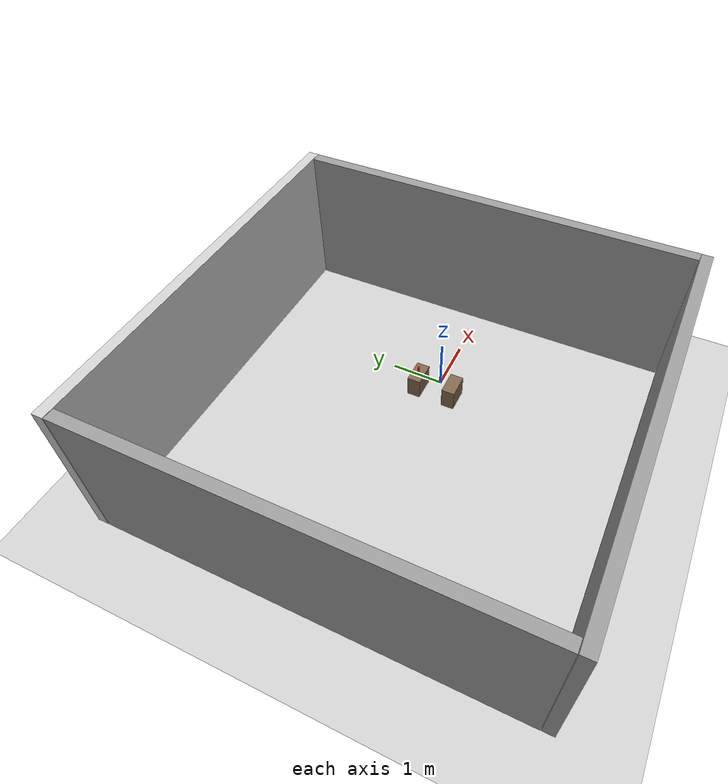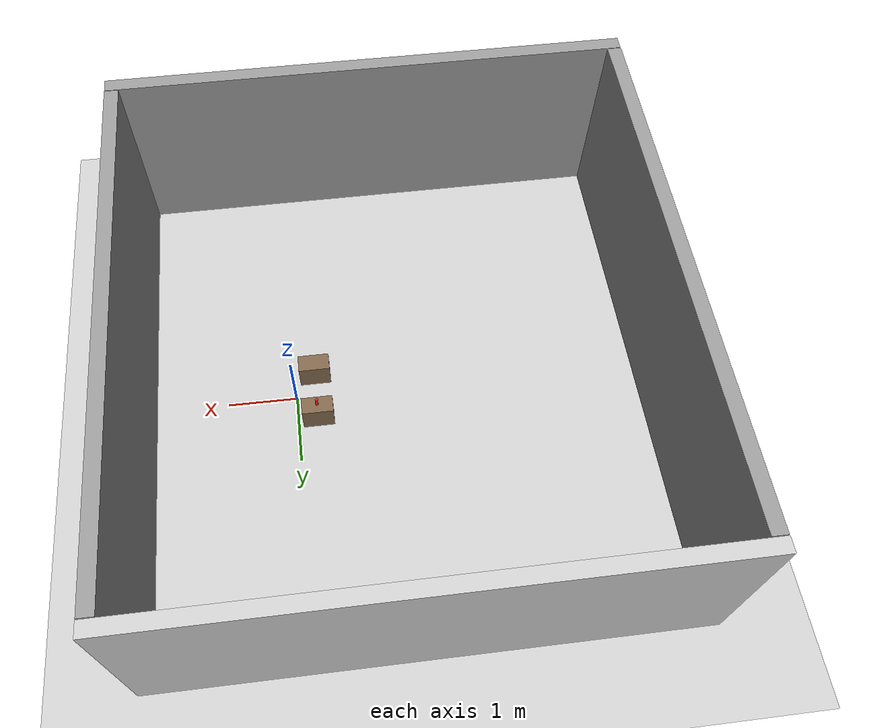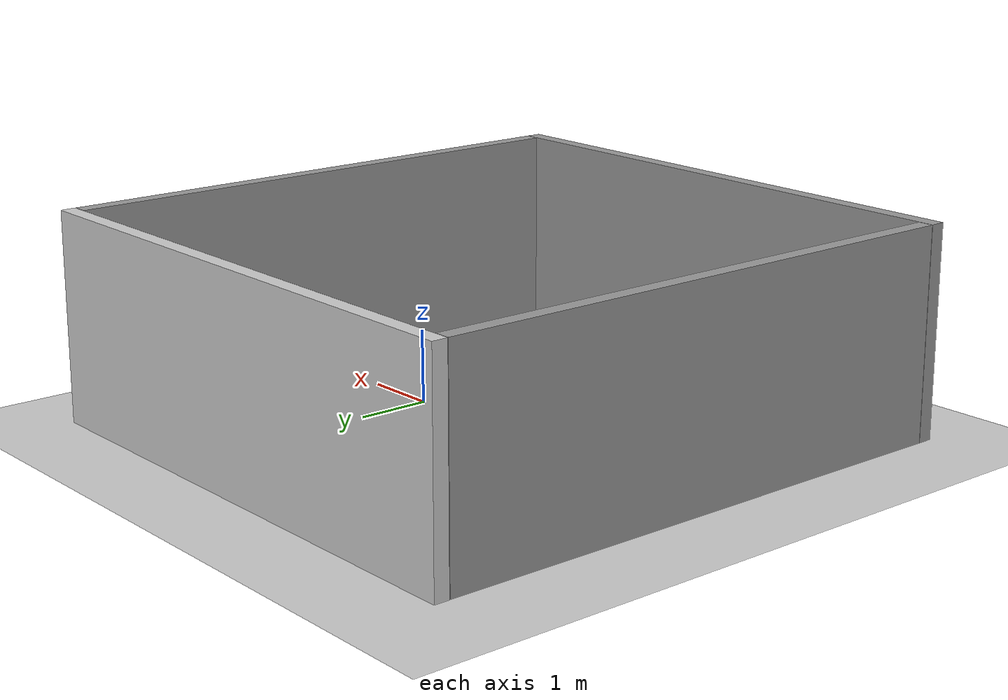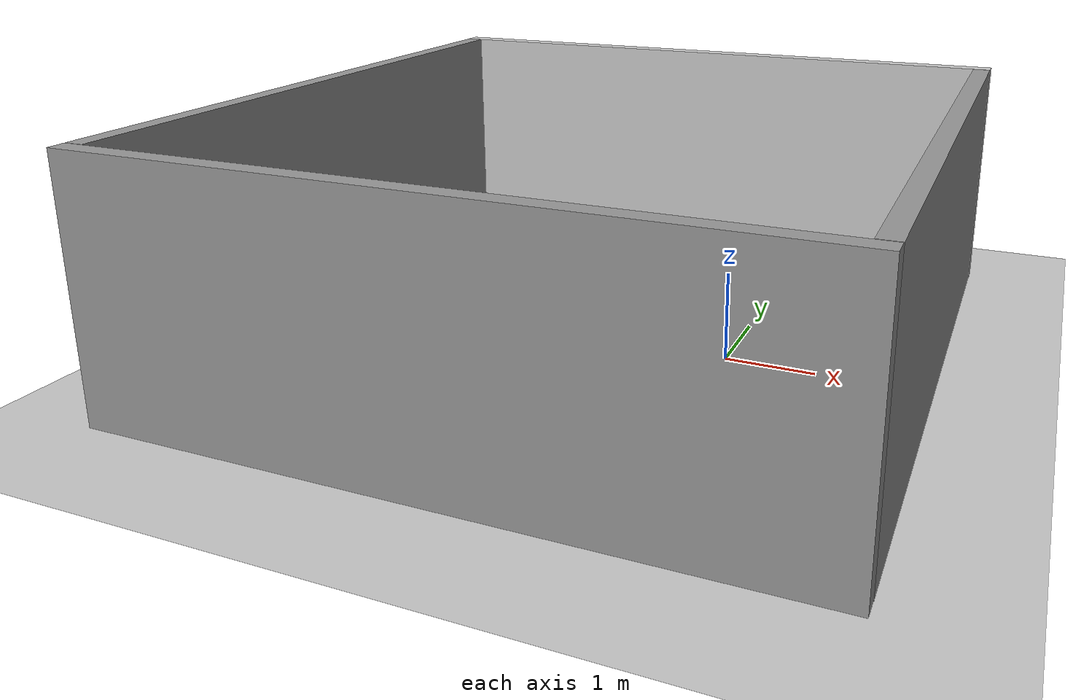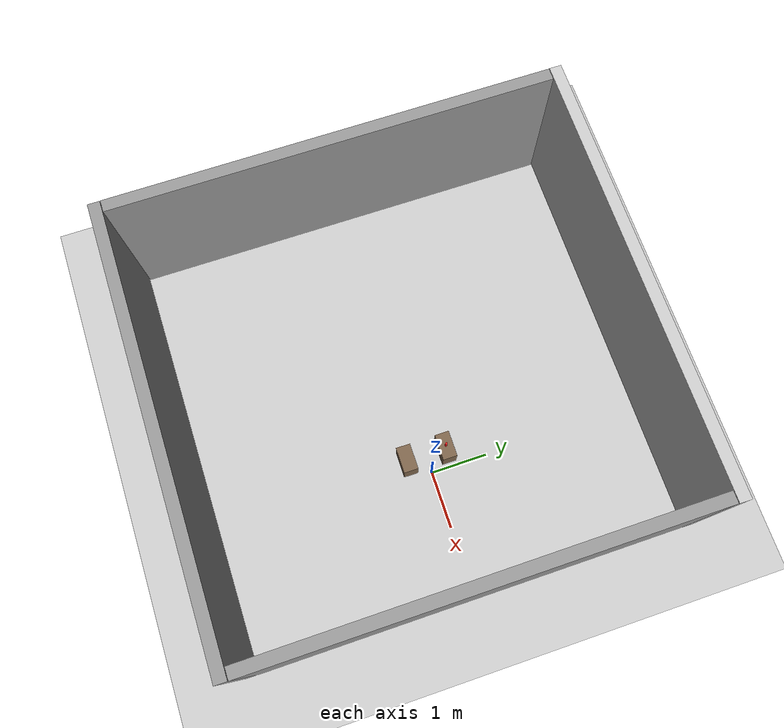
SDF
<sdf version="1.10">
 <world name="lab">
  <physics name="1ms" type="ode">
   <max_step_size>0.001</max_step_size>
   <real_time_factor>1</real_time_factor>
   <real_time_update_rate>1000</real_time_update_rate>
   <ode>
    <solver><type>quick</type><iters>50</iters><sor>1.3</sor></solver>
    <constraints>
     <cfm>0.0</cfm>
     <erp>0.2</erp>
     <contact_max_correcting_vel>100.0</contact_max_correcting_vel>
     <contact_surface_layer>0.001</contact_surface_layer>
    </constraints>
   </ode>
  </physics>
  <plugin name="gz::sim::systems::Physics" filename="gz-sim-physics-system"/>
  <plugin name="gz::sim::systems::UserCommands" filename="gz-sim-user-commands-system"/>
  <plugin name="gz::sim::systems::SceneBroadcaster" filename="gz-sim-scene-broadcaster-system"/>
  <gravity>0 0 -9.8000000000000007</gravity>
  <magnetic_field>5.5644999999999998e-06 2.2875799999999999e-05 -4.2388400000000002e-05</magnetic_field>
  <atmosphere type="adiabatic"/>
  <scene>
   <ambient>0.400000006 0.400000006 0.400000006 1</ambient>
   <background>0.699999988 0.699999988 0.699999988 1</background>
   <shadows>true</shadows>
  </scene>
  <model name="ground_plane">
   <static>true</static>
   <link name="link">
    <collision name="collision">
     <geometry><plane><normal>0 0 1</normal><size>100 100</size></plane></geometry>
     <surface>
      <friction><ode><mu>1.0</mu><mu2>1.0</mu2></ode></friction>
      <contact><ode><kp>1e7</kp><kd>1.0</kd><max_vel>0.01</max_vel><min_depth>0.001</min_depth></ode></contact>
      <bounce><restitution_coefficient>0</restitution_coefficient><threshold>1e6</threshold></bounce>
     </surface>
    </collision>
    <visual name="visual">
     <geometry><plane><normal>0 0 1</normal><size>100 100</size></plane></geometry>
     <material>
      <ambient>0.800000012 0.800000012 0.800000012 1</ambient>
      <diffuse>0.800000012 0.800000012 0.800000012 1</diffuse>
      <specular>0.800000012 0.800000012 0.800000012 1</specular>
     </material>
    </visual>
    <inertial>
     <mass>1</mass>
     <inertia><ixx>1</ixx><ixy>0</ixy><ixz>0</ixz><iyy>1</iyy><iyz>0</iyz><izz>1</izz></inertia>
    </inertial>
   </link>
  </model>
  <include>
   <uri>model://grey_wall_ldrobots</uri>
   <name>front_grey_wall</name>
   <pose>-1.5 3.86 0 0 0 0</pose>
  </include>
  <include><uri>model://grey_wall</uri><name>back_grey_wall</name><pose>-1.5 -3.86 0 0 0 0</pose></include>
  <include><uri>model://grey_wall</uri><name>left_grey_wall</name><pose>-5.15 0.0 0 0 0 1.57</pose></include>
  <include><uri>model://grey_wall</uri><name>right_grey_wall</name><pose>2.15 0.0 0 0 0 -1.57</pose></include>
  <light name="sun" type="directional">
   <pose>0 0 10 0 0 0</pose>
   <intensity>1</intensity>
   <direction>-0.5 0.10000000000000001 -0.90000000000000002</direction>
   <diffuse>0.800000012 0.800000012 0.800000012 1</diffuse>
   <specular>0.200000003 0.200000003 0.200000003 1</specular>
   <attenuation>
    <range>1000</range>
    <linear>0.01</linear>
    <constant>0.90000000000000002</constant>
    <quadratic>0.001</quadratic>
   </attenuation>
   <spot><inner_angle>0</inner_angle><outer_angle>0</outer_angle><falloff>0</falloff></spot>
  </light>
  <model name="test_table">
   <static>true</static>
   <pose>-0.30 0.35 0.2125 0 0 0</pose>
   <link name="link">
    <collision name="collision"><geometry><box><size>0.45 0.25 0.425</size></box></geometry></collision>
    <visual name="visual">
     <geometry><box><size>0.45 0.25 0.425</size></box></geometry>
     <material><ambient>0.5 0.4 0.3 1</ambient><diffuse>0.5 0.4 0.3 1</diffuse></material>
    </visual>
   </link>
  </model>
  <model name="lever">
   <pose>-0.30 0.35 0.5 0 0 0</pose>
   <link name="lever_arm">
    <collision name="collision">
     <geometry><cylinder><radius>0.02025</radius><length>0.15</length></cylinder></geometry>
     <surface>
      <friction><ode><mu>1.0</mu><mu2>1.0</mu2></ode></friction>
      <contact><ode><kp>1e6</kp><kd>1.0</kd></ode></contact>
     </surface>
    </collision>
    <visual name="visual">
     <geometry><cylinder><radius>0.02025</radius><length>0.15</length></cylinder></geometry>
     <material><ambient>0.9 0.1 0.1 1</ambient><diffuse>0.9 0.1 0.1 1</diffuse></material>
    </visual>
    <inertial>
     <mass>0.2</mass>
     <inertia>
      <ixx>0.000375</ixx>
      <iyy>0.000375</iyy>
      <izz>0.0001024</izz>
      <ixy>0</ixy>
      <ixz>0</ixz>
      <iyz>0</iyz>
     </inertia>
    </inertial>
   </link>
  </model>
  <model name="destination_table">
   <static>true</static>
   <pose>-0.30 -0.35 0.2125 0 0 0</pose>
   <link name="link">
    <collision name="collision"><geometry><box><size>0.45 0.25 0.425</size></box></geometry></collision>
    <visual name="visual">
     <geometry><box><size>0.45 0.25 0.425</size></box></geometry>
     <material><ambient>0.5 0.4 0.3 1</ambient><diffuse>0.5 0.4 0.3 1</diffuse></material>
    </visual>
   </link>
  </model>
 </world>
</sdf>

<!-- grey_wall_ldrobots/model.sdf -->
<sdf version="1.5">
  <model name="grey_wall_ldrobots">
    <static>true</static>
    <link name="link">
      <pose>0 0 1.4 0 0 0</pose>
      <collision name="collision">
        <geometry>
          <box>
            <size>7.5 0.2 2.8</size>
          </box>
        </geometry>
      </collision>
      <visual name="visual">
        <cast_shadows>false</cast_shadows>
        <geometry>
          <box>
            <size>7.5 0.2 2.8</size>
          </box>
        </geometry>
        <material>
          <ambient>0.7 0.7 0.7 1</ambient>
          <diffuse>0.8 0.8 0.8 1</diffuse>
          <specular>0.05 0.05 0.05 1</specular>
          <pbr>
            <metal>
              <albedo_map>model://grey_wall_ldrobots/materials/textures/grey_wall_ldrobots.png</albedo_map>
              <roughness>0.9</roughness>
              <metalness>0.0</metalness>
            </metal>
          </pbr>
</material>
      </visual>
    </link>
  </model>
</sdf>

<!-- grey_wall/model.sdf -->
<sdf version="1.5">
  <model name="grey_wall">
    <static>true</static>
    <link name="link">
      <pose>0 0 1.4 0 0 0</pose>
      <collision name="collision">
        <geometry>
          <box>
            <size>7.5 0.2 2.8</size>
          </box>
        </geometry>
      </collision>
      <visual name="visual">
        <cast_shadows>false</cast_shadows>
        <geometry>
          <box>
            <size>7.5 0.2 2.8</size>
          </box>
        </geometry>
        <material>
          <ambient>0.7 0.7 0.7 1</ambient>
          <diffuse>0.8 0.8 0.8 1</diffuse>
          <specular>0.05 0.05 0.05 1</specular>
          <pbr>
            <metal>
              <albedo_map>model://grey_wall/materials/textures/grey_wall.png</albedo_map>
              <roughness>0.9</roughness>
              <metalness>0.0</metalness>
            </metal>
          </pbr>
          <script> <!-- optional, for Gazebo Classic -->
            <uri>model://grey_wall/materials/scripts</uri>
            <uri>model://grey_wall/materials/textures</uri>
            <name>vrc/grey_wall</name>
          </script>
        </material>
      </visual>
    </link>
  </model>
</sdf>
